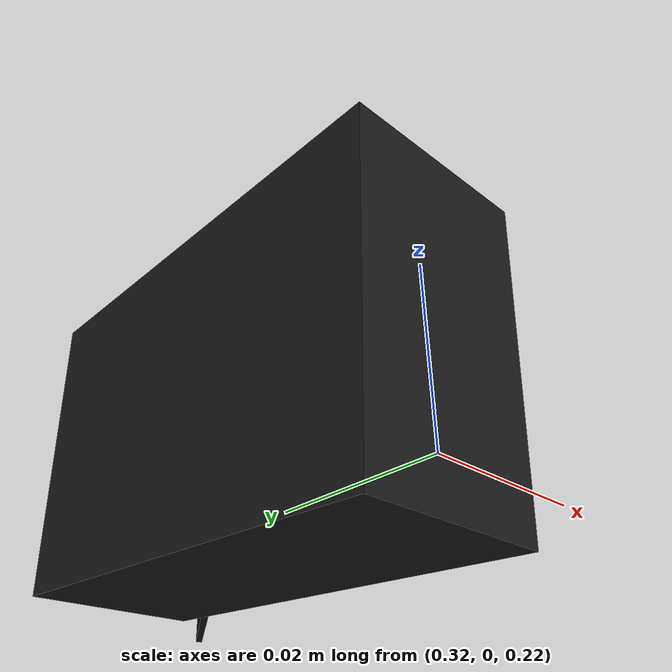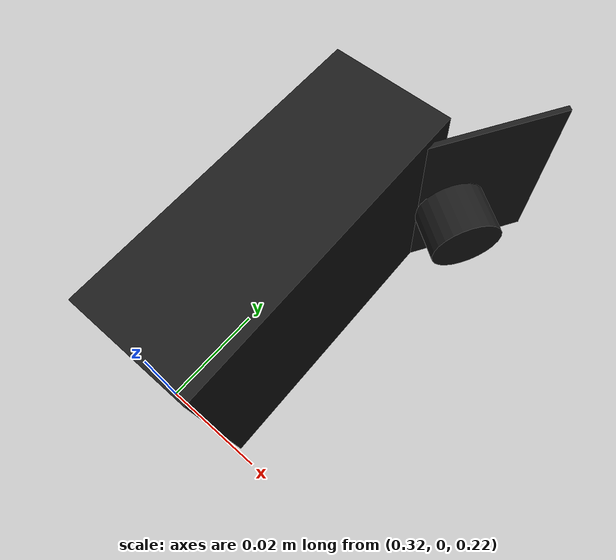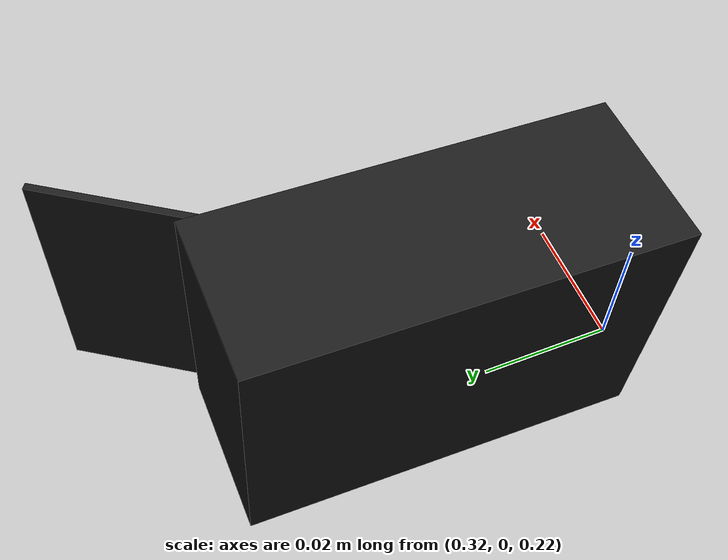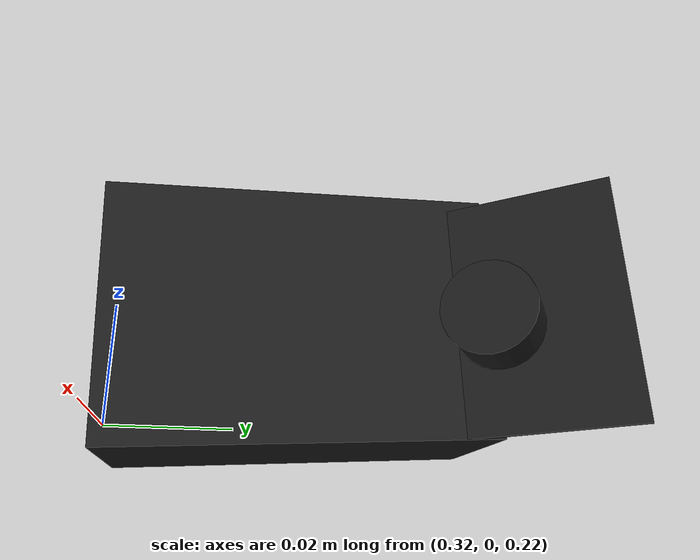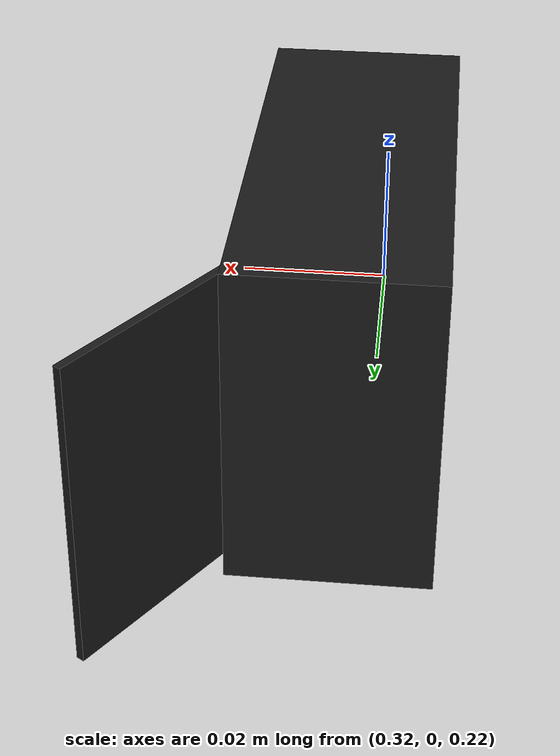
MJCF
<mujoco model="so101">
  <option integrator="implicitfast" timestep="0.005" cone="elliptic" iterations="10" ls_iterations="20" impratio="10"/>

  <compiler angle="radian" meshdir="assets" autolimits="true"/>

  <visual>
    <scale contactwidth="0.1" contactheight="0.05" forcewidth="0.02" framelength="0.75" framewidth="0.025"
      camera="0.2"/>
  </visual>

  <default>
    <mesh maxhullvert="128"/>

    <default class="so101">
      <joint damping="1" frictionloss="0.1" armature="0.005"/>
      <position kp="50"/>
      <default class="visual">
        <geom type="mesh" contype="0" conaffinity="0" group="2"/>
      </default>
      <default class="collision">
        <geom group="3" condim="3" rgba="1 0.82 0.12 1"/>
      </default>
      <default class="collision_gripper">
        <geom group="3" condim="6" friction="1 5e-3 5e-4" solref="0.01 1" priority="1" rgba="0.18 0.18 0.2 1" mass="0"/>
      </default>
      <default class="collision_gripper_mesh">
        <geom group="4" condim="6" friction="1 5e-3 5e-4" solref="0.01 1" priority="1" rgba="0.18 0.18 0.2 1" mass="0"/>
      </default>
    </default>

    <default class="sts3215">
      <geom contype="0" conaffinity="0"/>
      <joint damping="0.60" frictionloss="0.052" armature="0.028"/>
      <position kp="998.22" kv="2.731" forcerange="-2.94 2.94"/>
    </default>

    <default class="backlash">
      <!-- +/- 0.5° of backlash – not added to any joints for now -->
      <joint damping="0.01" frictionloss="0" armature="0.01" limited="true" range="-0.0087267 0.0087267"/>
    </default>
  </default>

  <asset>
    <!-- Gripper collision meshes. -->
    <mesh maxhullvert="64" file="wrist_roll_follower_so101_gripper_part0_v1.stl"/>
    <mesh maxhullvert="64" file="moving_jaw_so101_gripper_part0_v1.stl"/>
    <mesh maxhullvert="64" file="moving_jaw_so101_gripper_part1_v1.stl"/>
  </asset>

  <worldbody>
    <!-- Link base -->
    <body name="base" pos="0 0 0" quat="1 0 0 0" childclass="so101">
      <inertial pos="0.0137179 -5.19711e-05 0.0334843" mass="0.147"
        fullinertia="0.000114686 0.000136117 0.000130364 -4.59787e-07 4.97151e-06 9.75275e-08"/>
      <!-- Part base_motor_holder_so101_v1 -->
      <!-- Part base_so101_v2 -->
      <!-- Part sts3215_03a_v1 -->
      <!-- Part waveshare_mounting_plate_so101_v2 -->
      <!-- Frame baseframe -->
      <site group="3" name="baseframe" pos="0 0 0" quat="1 0 0 0"/>
      <!-- Link shoulder -->
      <body name="shoulder" pos="0.0388353 0 0.0624" quat="0 0 -1 0">
        <!-- Joint from base to shoulder -->
        <joint axis="0 0 1" name="shoulder_pan" type="hinge" range="-1.91986 1.91986" class="sts3215"/>
        <inertial pos="-0.0307604 -1.7e-05 -0.0252713" mass="0.100006"
          fullinertia="8.3759e-05 8.10403e-05 2.39783e-05 7.55525e-08 -1.16342e-06 1.54663e-07"/>
        <!-- Part sts3215_03a_v1_2 -->
        <geom type="box" class="collision" pos="-0.030399 0.000422 -0.0387" quat="1 1 1 -1" size="0.023 0.015 0.01"/>
        <!-- Part motor_holder_so101_base_v1 -->
        <geom type="box" class="collision" pos="-0.025 0 0.0" quat="1 1 -1 1" size="0.038 0.025 0.02"/>
        <!-- Part rotation_pitch_so101_v1 -->
        <!-- Link upper_arm -->
        <body name="upper_arm" pos="-0.0303992 -0.0182778 -0.0542" quat="1 -1 -1 -1">
          <!-- Joint from shoulder to upper_arm -->
          <joint axis="0 0 1" name="shoulder_lift" type="hinge" range="-1.7453293 1.7453293" class="sts3215"/>
          <inertial pos="-0.089847 -0.008382 0.018409" mass="0.103"
            fullinertia="4.08002e-05 0.000147318 0.000142487 -1.97819e-05 -4.03016e-08 8.97326e-09"/>
          <!-- Part sts3215_03a_v1_3 -->
          <geom type="box" class="collision" pos="-0.06 0 0.02" quat="0 -1 1 0" size="0.01 0.07 0.03"/>
          <!-- Part upper_arm_so101_v1 -->
          <geom type="box" class="collision" pos="-0.12 -0.014 0.0182" quat="0 1 0 0" size="0.01 0.02 0.015"/>
          <!-- Link lower_arm -->
          <body name="lower_arm" pos="-0.11257 -0.028 0" quat="1 0 0 1">
            <!-- Joint from upper_arm to lower_arm -->
            <!-- Note: 5-degree calibration offset applied to joint range -->
            <joint axis="0 0 1" name="elbow_flex" type="hinge" range="-1.69 1.69" class="sts3215"/>
            <inertial pos="-0.098070 0.0032438 0.018283" mass="0.104"
              fullinertia="2.87438e-05 0.000159844 0.00014529 7.41152e-06 1.26409e-06 -4.90188e-08"/>
            <!-- Part under_arm_so101_v1 -->
            <geom type="box" class="collision" pos="-0.05 0 0.0182" quat="0 1 0 0" size="0.07 0.01 0.03"/>
            <!-- Part motor_holder_so101_wrist_v1 -->
            <geom type="box" class="collision" pos="-0.125 0.005 0.018" quat="0 -1 0 0" size="0.023 0.013 0.018"/>
            <!-- Part sts3215_03a_v1_4 -->
            <!-- Link wrist -->
            <body name="wrist" pos="-0.1349 0.0052 0" quat="1 0 0 -1">
              <!-- Joint from lower_arm to wrist -->
              <joint axis="0 0 1" name="wrist_flex" type="hinge" range="-1.658063 1.658063" class="sts3215"/>
              <inertial pos="-0.000103312 -0.0386143 0.0281156" mass="0.079"
                fullinertia="3.68263e-05 2.5391e-05 2.1e-05 1.7893e-08 -5.28128e-08 3.6412e-06"/>
              <!-- Part sts3215_03a_no_horn_v1 -->
              <geom type="box" class="collision" pos="0 -0.0424 0.0256" quat="1 1 1 -1" size="0.029 0.015 0.018"/>
              <!-- Part wrist_roll_pitch_so101_v2 -->
              <geom type="box" class="collision" pos="0 -0.02 0.0191" quat="1 -1 -1 -1" size="0.027 0.01 0.03"/>
              <!-- Link gripper -->
              <body name="gripper" pos="5.55112e-17 -0.0611 0.0181" quat="0.0172091 -0.0172091 0.706897 0.706897">
                <!-- Joint from wrist to gripper -->
                <joint axis="0 0 1" name="wrist_roll" type="hinge" range="-2.7438473 2.8412063" class="sts3215"/>
                <inertial pos="0.000214 0.000245 -0.025187" mass="0.087"
                  fullinertia="2.75087e-05 4.33657e-05 3.45059e-05 -3.35241e-07 -5.7352e-06 -5.17847e-08"/>
                <!-- Part sts3215_03a_v1_5 -->
                <!-- Part wrist_roll_follower_so101_v1 (fixed jaw) -->
                <geom type="box" class="collision" pos="0 -0.000218 0.00095" quat="0 1 0 0" size="0.01 0.01 0.018"/>
                <!-- Part wrist_roll_follower_so101_v1 gripper collision  -->
                <geom name="fixed_jaw_box1" class="collision_gripper" type="box" size="0.0325 0.015 0.015"
                  pos="-0.0025 0 -0.022"/>
                <geom name="fixed_jaw_box2" class="collision_gripper" type="box" size="0.01 0.015 0.005"
                  pos="-0.024 0 -0.04"/>
                <geom name="fixed_jaw_sph_tip1" class="collision_gripper" type="sphere" size="0.00075"
                  pos="-0.0081 0 -0.101"/>
                <geom name="fixed_jaw_sph_tip2" class="collision_gripper" type="sphere" size="0.00075"
                  pos="-0.0081 0.0035 -0.0975"/>
                <geom name="fixed_jaw_sph_tip3" class="collision_gripper" type="sphere" size="0.00075"
                  pos="-0.0081 -0.0035 -0.0975"/>
                <geom type="mesh" class="collision_gripper_mesh" pos="0 -0.000218 0.00095" quat="0 1 0 0"
                  mesh="wrist_roll_follower_so101_gripper_part0_v1"/>
                <geom name="fixed_jaw_box3" class="collision_gripper" type="capsule" size="0.0011 0.002"
                  pos="-0.009 0 -0.103" euler="1.57 0 0"/>
                <geom name="fixed_jaw_box4" class="collision_gripper" type="box" size="0.001 0.004 0.004"
                  pos="-0.009 0 -0.0982"/>
                <geom name="fixed_jaw_box5" class="collision_gripper" type="box" size="0.001 0.005 0.006"
                  pos="-0.0108 0 -0.0905"/>
                <geom name="fixed_jaw_box6" class="collision_gripper" type="box" size="0.001 0.009 0.008"
                  pos="-0.0125 0 -0.0727"/>
                <geom name="fixed_jaw_box7" class="collision_gripper" type="box" size="0.001 0.01 0.008"
                  pos="-0.0143 0 -0.053"/>
                <!-- Frame gripperframe -->
                <site group="3" name="gripperframe" pos="0.012 -0.000218 -0.098127" quat="1 0 1 0"/>
                <!-- Camera mount -->
                <body name="camera_mount">
                  <camera name="wrist_cam" mode="fixed" pos="-0.00296 0.05436 -0.05310"
                    quat="0.958280 -0.285792 -0.001556 0.004547" fovy="61"/>
                  <geom type="box" mass="0.012" size="0.02 0.03 0.012" pos="0 0.03 -0.03" class="visual" rgba="0.1 0.1 0.1 1"/>
                  <geom name="wrist_camera_pcb" type="box" size="0.019 0.019 0.0005" pos="-0.00101 0.05958 -0.04515"
                    quat="0.958280 -0.285792 -0.001556 0.004547" group="2" rgba="0.1 0.1 0.1 1"
                    contype="0" conaffinity="0"/>
                  <geom name="wrist_camera_lens" type="cylinder" size="0.007 0.00475" mass="0"
                    pos="-0.00298 0.05669 -0.04954" quat="0.958280 -0.285792 -0.001556 0.004547" group="1"
                    rgba="0.1 0.1 0.1 1" contype="0" conaffinity="0"/>
                  <geom name="camera_box1" class="collision_gripper" type="box" size="0.015 0.015 0.003"
                    pos="-0.0025 0.03 -0.03"/>
                  <geom name="camera_box2" class="collision_gripper" type="box" size="0.021 0.021 0.003"
                    pos="-0.001 0.06 -0.04" euler="-0.55 0 0"/>
                </body>
                <!-- Link moving_jaw_so101_v1 -->
                <body name="moving_jaw_so101_v1" pos="0.0202 0.0188 -0.0234" quat="1 1 0 0">
                  <!-- Joint from gripper to moving_jaw_so101_v1 -->
                  <joint axis="0 0 1" name="gripper" type="hinge" range="-0.174533 1.7453292" class="sts3215"/>
                  <inertial pos="-0.001575 -0.0300244 0.0192755" mass="0.012"
                    fullinertia="6.61427e-06 1.89032e-06 5.28738e-06 -3.19807e-07 -5.90717e-09 -1.09945e-07"/>
                  <!-- Part moving_jaw_so101_v1 -->
                  <!-- Part moving_jaw_so101_v1 gripper collisions -->
                  <geom type="mesh" class="collision_gripper_mesh" pos="0 0 0.0189" quat="1 0 0 0"
                    mesh="moving_jaw_so101_gripper_part0_v1"/>
                  <geom type="mesh" class="collision_gripper_mesh" pos="0 0 0.0189" quat="1 0 0 0"
                    mesh="moving_jaw_so101_gripper_part1_v1"/>
                  <geom name="moving_jaw_box1" class="collision_gripper" type="box" size="0.01 0.01 0.015"
                    pos="-0.0 -0.013 0.019"/>
                  <geom name="moving_jaw_sph_tip1" class="collision_gripper" type="sphere" size="0.00075"
                    pos="-0.012 -0.078 0.0192"/>
                  <geom name="moving_jaw_sph_tip2" class="collision_gripper" type="sphere" size="0.00075"
                    pos="-0.012 -0.0745 0.0225"/>
                  <geom name="moving_jaw_sph_tip3" class="collision_gripper" type="sphere" size="0.00075"
                    pos="-0.012 -0.0745 0.0155"/>
                  <geom name="moving_jaw_box2" class="collision_gripper" type="box" size="0.001 0.004 0.004"
                    pos="-0.0113 -0.076 0.01875"/>
                  <geom name="moving_jaw_box3" class="collision_gripper" type="box" size="0.001 0.005 0.006"
                    pos="-0.0093 -0.067 0.01875"/>
                </body>
              </body>
            </body>
          </body>
        </body>
      </body>
    </body>
  </worldbody>

  <actuator>
    <position class="sts3215" name="shoulder_pan" joint="shoulder_pan" ctrlrange="-1.91986 1.91986"/>
    <position class="sts3215" name="shoulder_lift" joint="shoulder_lift" ctrlrange="-1.74533 1.74533"/>
    <position class="sts3215" name="elbow_flex" joint="elbow_flex" ctrlrange="-1.69 1.69"/>
    <position class="sts3215" name="wrist_flex" joint="wrist_flex" ctrlrange="-1.65806 1.65806"/>
    <position class="sts3215" name="wrist_roll" joint="wrist_roll" ctrlrange="-2.74385 2.84121"/>
    <position class="sts3215" name="gripper" joint="gripper" ctrlrange="-0.17453 1.74533"/>
  </actuator>
</mujoco>
